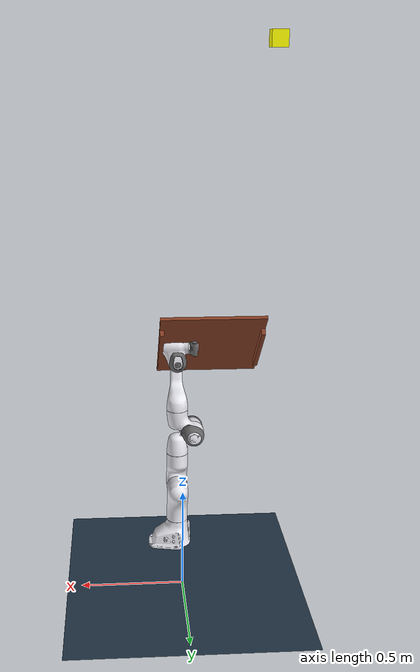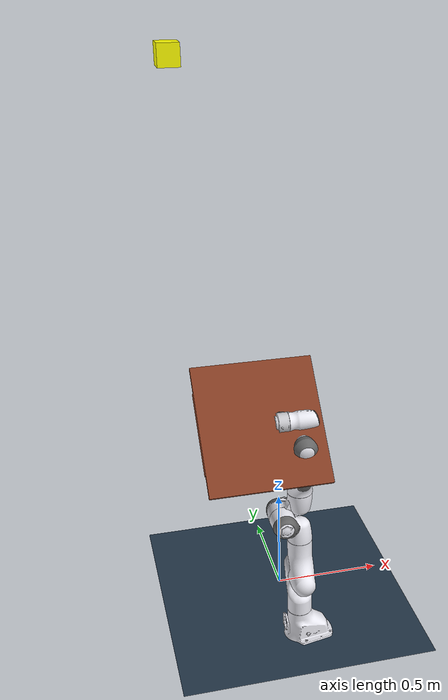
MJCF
<mujoco model="dual-panda v01">

    <include file="panda/assets/basic_scene.xml" />
    <include file="panda/assets/assets.xml" />

    <!-- change this for different objects -->

    <include file="panda/assets/tray.xml" />

    <compiler meshdir="" />

    <option noslip_iterations="500" />
    <option solver="Newton" iterations="100" tolerance="1e-5"/>

    <option cone="elliptic"> </option>
    <option><flag multiccd="enable"/> </option>

    <default>
        <default class='torso'>
            <geom group='2' contype='0' conaffinity='0' rgba=".95 .99 .92 1" />
        </default>/ </default>

    <worldbody>

        <body name='torso' childclass='torso'>

            <body name='leftarm' pos='0 -0.4 0' euler='0 0 3.14'>
                <include file="panda/assets/chainL_complete.xml" />

            </body>

        </body>
    <body name="object" pos="-0.4756487 -0.44454999  2.6048999" quat="0 0.7071068 0 0.7071068">
            <joint type="free" name="object_virtual_joint_10" damping="5" />
            <geom type="box" size="0.04 0.04 0.04 " rgba="1 1 0 1" friction="0.6 0.25 0.1" condim="6"/>
            <inertial pos="0 0 0" mass="0.366" diaginertia="0.000349 0.000349 0.000349"/>
    </body>

    </worldbody>

    <include file='panda/assets/actuatorL.xml' />

</mujoco>

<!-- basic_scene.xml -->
<mujocoinclude>
    <asset>
        <texture name="texplane" type="2d" builtin="checker" rgb1=".2 .3 .4" rgb2=".1 0.15 0.2"
                width="512" height="512"/>
        <material name="MatGnd" reflectance="0.5" texture="texplane" texrepeat="1 1" texuniform="true"/>
    </asset>

    <worldbody>
        <light directional="false" diffuse=".8 .8 .8" specular="0.3 0.3 0.3" pos="1  1 3" dir="-1 -1 -3"/>
        <light directional="false" diffuse=".8 .8 .8" specular="0.3 0.3 0.3" pos="1 -1 3" dir="-1 1 -3"/>
        <light directional="false" diffuse=".8 .8 .8" specular="0.3 0.3 0.3" pos="-1 0 3" dir="1 0 -3" />
        <geom name="ground" pos="0 0 0" size="5 5 10" material="MatGnd" type="plane" contype="1" conaffinity="1"/>
        <body name="targetL" mocap="true">
            <geom type="box" size=".05 .05 .05" contype="0" conaffinity="0" rgba=".6 .3 .3 0"/>
            <site type="sphere" size="0.01" rgba="0 0 1 0" group="1"/>
        </body>
        <body name="targetR" mocap="true">
            <geom type="box" size=".05 .05 .05" contype="0" conaffinity="0" rgba=".6 .3 .3 0"/>
            <site type="sphere" size="0.01" rgba="0 0 1 0" group="1"/>
        </body>
    </worldbody>
    <keyframe>
        <key name="home" qpos="-1.08336 -1.66423  -1.55909  -1.67529  1.46467  0.0244119  -2.12548 0.6570866009849246 -0.4437049375852182 0.8  -0.5 0.5 -0.5 0.5" ctrl="0 0 0 0 0 0 0"/>

        <!-- This is for monitor, set z as 0.157 -->

        <!-- this is for table -->

    </keyframe>
</mujocoinclude>

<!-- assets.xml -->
<mujocoinclude>
    <compiler angle="radian" />
    <option noslip_iterations="20"/>
    <option timestep="0.002"/>
    <size nuser_actuator="5"/>
    <option integrator="implicit"/>
    <asset>
        <mesh name="link0_col" file="./panda/meshes/collision/link0.stl"/>
        <mesh name="link1_col" file="./panda/meshes/collision/link1.stl"/>
        <mesh name="link2_col" file="./panda/meshes/collision/link2.stl"/>
        <mesh name="link3_col" file="./panda/meshes/collision/link3.stl"/>
        <mesh name="link4_col" file="./panda/meshes/collision/link4.stl"/>
        <mesh name="link5_col" file="./panda/meshes/collision/link5.stl"/>
        <mesh name="link6_col" file="./panda/meshes/collision/link6.stl"/>
        <mesh name="link7_col" file="./panda/meshes/collision/link7.stl"/>
        <mesh name="hand_col" file="./panda/meshes/collision/hand.stl"/>
        <mesh name="link0_viz" file="./panda/meshes/visual/link0.stl"/>
        <mesh name="link1_viz" file="./panda/meshes/visual/link1.stl"/>
        <mesh name="link2_viz" file="./panda/meshes/visual/link2.stl"/>
        <mesh name="link3_viz" file="./panda/meshes/visual/link3.stl"/>
        <mesh name="link3_dark_viz" file="./panda/meshes/visual/link3_dark.stl" scale="1.01 1.01 1.01"/>
        <mesh name="link4_viz" file="./panda/meshes/visual/link4.stl"/>
        <mesh name="link4_dark_viz" file="./panda/meshes/visual/link4_dark.stl" scale="1.01 1.01 1.01"/>
        <mesh name="link5_viz" file="./panda/meshes/visual/link5.stl"/>
        <mesh name="link5_dark_viz" file="./panda/meshes/visual/link5_dark.stl" scale="1.01 1.01 1.01"/>
        <mesh name="link6_viz" file="./panda/meshes/visual/link6.stl"/>
        <mesh name="link6_dark_viz" file="./panda/meshes/visual/link6_dark.stl" scale="1.01 1.01 1.01"/>
        <mesh name="link7_viz" file="./panda/meshes/visual/link7.stl"/>
        <mesh name="link7_dark_viz" file="./panda/meshes/visual/link7_dark.stl" scale="1.01 1.01 1.01"/>
        <mesh name="hand_viz" file="./panda/meshes/visual/hand.stl"/>
    </asset>

    <default>
        <default class = "object">
            <default class="object_viz">
                <geom contype="0" conaffinity="0" group="0" type="mesh" rgba=".92 .92 .95 1"/>
            </default>
            <default class="object_col">
                <geom contype="1" conaffinity="1" group="3" type="mesh" rgba=".5 .6 .7 1"/>
            </default>
        </default>
    </default>

    <default>
        <default class="panda">
            <joint pos="0 0 0" axis="0 0 1" limited="true"/>
            <default class="panda_viz">
                <geom contype="0" conaffinity="0" group="0" type="mesh" rgba=".92 .92 .95 1"/>
            </default>
            <default class="panda_grey_viz">
                <geom contype="0" conaffinity="0" group="0" type="mesh" rgba=".4 .4 .4 1"/>
            </default>

            <default class="panda_col">
                <geom contype="1" conaffinity="1" group="3" type="mesh" rgba=".5 .6 .7 1"/>
            </default>
            <default class="panda_arm">
                <joint damping="100"/>
            </default>
             <default class="panda_forearm">
                <joint damping="10"/>
            </default>
             <default class="panda_finger">
                <joint damping="10" armature='5'/>
                <geom friction="10 10 10" user="0" rgba="0.5 0.6 0.7 .4" contype="1" conaffinity="0" condim="6" group="3" />
                <position user="1002 40 2001 -0.0001 0.0001"/>
            </default>
        </default>
    </default>
</mujocoinclude>

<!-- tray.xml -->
<mujocoinclude>
    <asset>
        <mesh name="tray_viz" file="./panda/meshes/visual/objects/tray.stl" scale="0.4 0.2 0.2" />
        <mesh name="trayPart-0"
            file="./panda/meshes/collision/objects/decompositions/tray/trayPart-0.stl"
            scale="0.4 0.2 0.2" />
        <mesh name="trayPart-1"
            file="./panda/meshes/collision/objects/decompositions/tray/trayPart-1.stl"
            scale="0.2 0.2 0.2" />
        <mesh name="trayPart-2"
            file="./panda/meshes/collision/objects/decompositions/tray/trayPart-2.stl"
            scale="0.2 0.2 0.2" />
    </asset>
</mujocoinclude>

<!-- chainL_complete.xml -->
<mujocoinclude>

    <body name="left_panda_link0" childclass="panda" gravcomp="1">
        <inertial pos="0 0 0" mass="3.06" diaginertia="0.3 0.3 0.3"/>
        <geom class="panda_viz" mesh="link0_viz"/>
        <geom class="panda_col" mesh="link0_col"/>
        <body name="left_panda_link1" pos="0 0 0.333" gravcomp="1">
            <inertial pos="3.875e-03 2.081e-03 -0.1750" mass="4.970684" fullinertia="7.0337e-01 7.0661e-01 9.1170e-03 -1.3900e-04 6.7720e-03 1.9169e-02" />
            <joint name="left_panda_joint1" range="-2.8973 2.8973" class="panda_arm" frictionloss="5"/>
            <geom class="panda_viz" mesh="link1_viz"/>
            <geom class="panda_col" mesh="link1_col"/>
            <body name="left_panda_link2" pos="0 0 0" quat="0.707107 -0.707107 0 0" gravcomp="1">
                <inertial pos="-3.141e-03 -2.872e-02 3.495e-03" mass="0.646926" fullinertia="7.9620e-03 2.8110e-02 2.5995e-02 -3.9250e-03 1.0254e-02 7.0400e-04" />
                <joint name="left_panda_joint2" range="-1.7628 1.7628" class="panda_arm" frictionloss="2"/>
                <geom class="panda_viz" mesh="link2_viz"/>
                <geom class="panda_col" mesh="link2_col"/>
                <body name="left_panda_link3" pos="0 -0.316 0" quat="0.707107 0.707107 0 0" gravcomp="1">
                    <inertial pos="2.7518e-02 3.9252e-02 -6.6502e-02" mass="3.228604" fullinertia="3.7242e-02 3.6155e-02 1.0830e-02 -4.7610e-03 -1.1396e-02 -1.2805e-02" />
                    <joint name="left_panda_joint3" range="-2.8973 2.8973" class="panda_arm" frictionloss="2"/>
                    <geom class="panda_viz" mesh="link3_viz"/>
                    <geom class="panda_grey_viz" mesh="link3_dark_viz" pos="0 .001 0"/>
                    <geom class="panda_col" mesh="link3_col"/>
                    <body name="left_panda_link4" pos="0.0825 0 0" quat="0.707107 0.707107 0 0" gravcomp="1">
                        <inertial pos="-5.317e-02 1.04419e-01 2.7454e-02" mass="3.587895" fullinertia="2.5853e-02 1.9552e-02 2.8323e-02 7.7960e-03 -1.3320e-03 8.6410e-03" />
                        <joint name="left_panda_joint4" range="-3.0718 -0.4" class="panda_arm" frictionloss="0.5"/>
                        <geom class="panda_viz" mesh="link4_viz"/>
                        <geom class="panda_grey_viz" mesh="link4_dark_viz"/>
                        <geom class="panda_col" mesh="link4_col"/>
                        <body name="left_panda_link5" pos="-0.0825 0.384 0" quat="0.707107 -0.707107 0 0" gravcomp="1">
                            <inertial pos="-1.1953e-02 4.1065e-02 -3.8437e-02" mass="1.225946" fullinertia="3.5549e-02 2.9474e-02 8.6270e-03 -2.1170e-03 -4.0370e-03 2.2900e-04" />
                            <joint name="left_panda_joint5" range="-2.8973 2.8973" class="panda_forearm" frictionloss="1"/>
                            <geom class="panda_viz" mesh="link5_viz"/>
                            <geom class="panda_grey_viz" mesh="link5_dark_viz"/>
                            <geom class="panda_col" mesh="link5_col" mass="3.00049"/>
                            <body name="left_panda_link6" pos="0 0 0" euler='1.57 0 1.57' gravcomp="1">
                                <inertial pos="6.0149e-02 -1.4117e-02 -1.0517e-02" mass="1.666555" fullinertia="1.9640e-03 4.3540e-03 5.4330e-03 1.0900e-04 -1.1580e-03 3.4100e-04" />
                                <joint name="left_panda_joint6" range="-1.6573 2.1127" class="panda_forearm" frictionloss="0.5"/>
                                <geom class="panda_viz" mesh="link6_viz"/>
                                <geom class="panda_grey_viz" mesh="link6_dark_viz"/>
                                <geom class="panda_col" mesh="link6_col"/>
                                <body name="left_panda_link7" pos="0.088 0 0" euler='1.57 0 0.7854' gravcomp="1">
                                    <inertial pos="1.0517e-02 -4.252e-03 6.1597e-02" mass="7.35522e-01" fullinertia="1.2516e-02 1.0027e-02 4.8150e-03 -4.2800e-04 -1.1960e-03 -7.4100e-04" />
                                    <joint name="left_panda_joint7" range="-2.8973 2.8973" class="panda_forearm" frictionloss="0.5"/>
                                    <geom class="panda_viz" mesh="link7_viz" rgba=".8 .8 .82 1"/>
                                    <geom class="panda_grey_viz" mesh="link7_dark_viz" pos="0 0 -.0008"/>
                                    <geom class="panda_col" mesh="link7_col"/>
                                    <camera name="Franka_wrist_cam" pos=".050 -.050 0.15" euler="2.95 0.2 -.787"/>
                                    <site name='end_effector' pos='0 0 0.0' size='0.01' euler='1.57 0 0'/>

                                    <body name="collision_object" pos="0 0 0.165" euler="0 0 0" gravcomp="1">
                                        <site name="tray_site" pos="0 0 0"/>
                                        <geom class="object_viz" mesh="tray_viz" rgba="0.52941176 0.24313725 0.1372549 1"/>
                                        <geom class="object_col" mesh="trayPart-0" friction="0.6 0.25 0.01" condim="6"/>
                                        <inertial pos="0 0 0" mass="0.2" diaginertia="0.0015 0.0015 0.003"/>
                                    </body>
                                </body>
                            </body>
                        </body>
                    </body>
                </body>
            </body>
        </body>
    </body>

</mujocoinclude>

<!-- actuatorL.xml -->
<mujocoinclude>
    <actuator>
        <motor class="panda" name="left_panda_joint1" joint="left_panda_joint1"  forcerange="-87 87" ctrlrange="-87 87"/>
        <motor class="panda" name="left_panda_joint2" joint="left_panda_joint2"  forcerange="-87 87" ctrlrange="-87 87"/>
        <motor class="panda" name="left_panda_joint3" joint="left_panda_joint3"  forcerange="-87 87"   ctrlrange="-87 87"/>
        <motor class="panda" name="left_panda_joint4" joint="left_panda_joint4"  forcerange="-87 87"   ctrlrange="-87 87"/>
        <motor class="panda" name="left_panda_joint5" joint="left_panda_joint5"  forcerange="-12 12"   ctrlrange="-12 12"/>
        <motor class="panda" name="left_panda_joint6" joint="left_panda_joint6"  forcerange="-12 12"   ctrlrange="-12 12"/>
        <motor class="panda" name="left_panda_joint7" joint="left_panda_joint7"  forcerange="-12 12"   ctrlrange="-12 12"/>
    </actuator>
</mujocoinclude>
